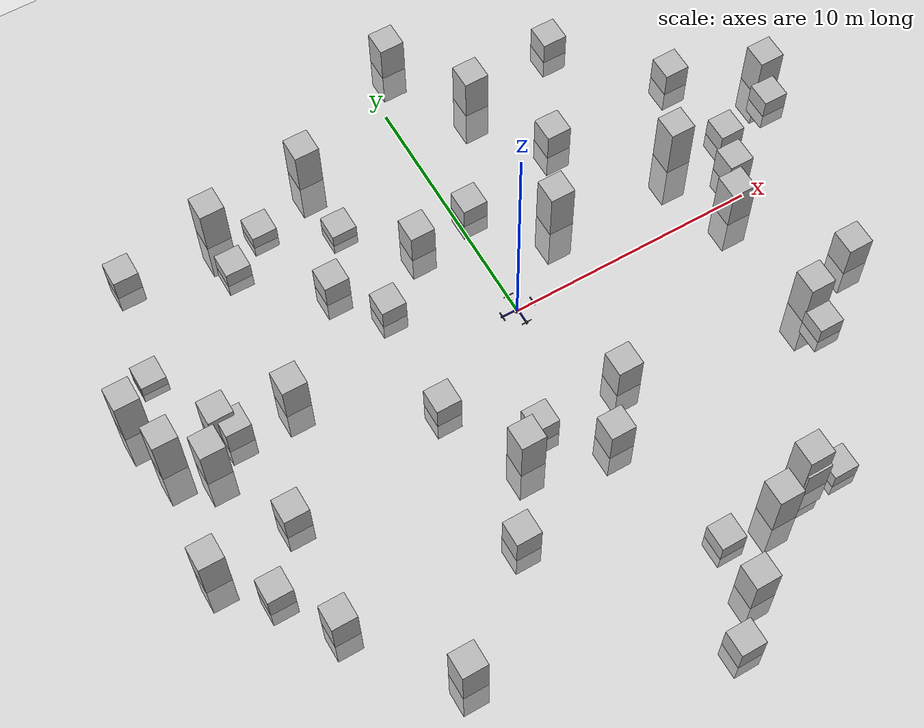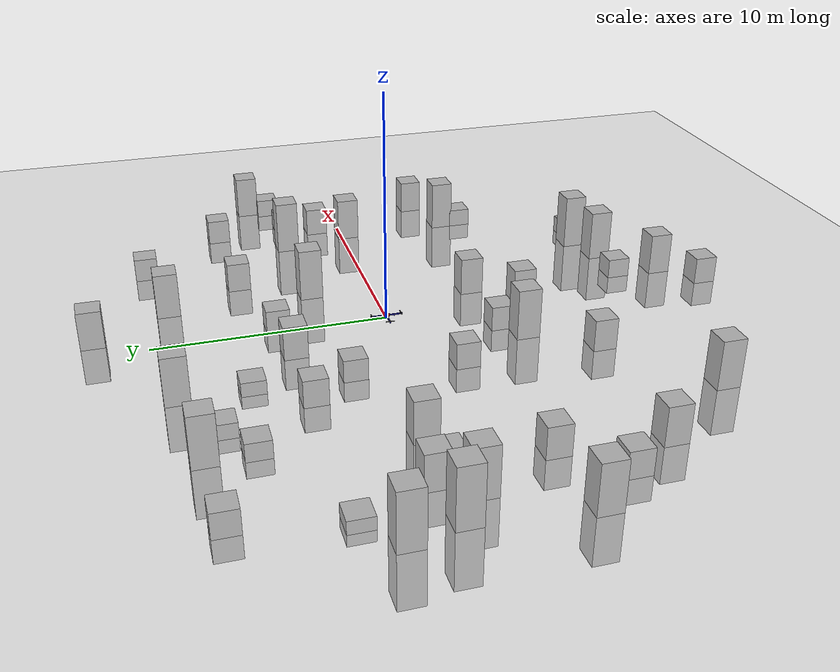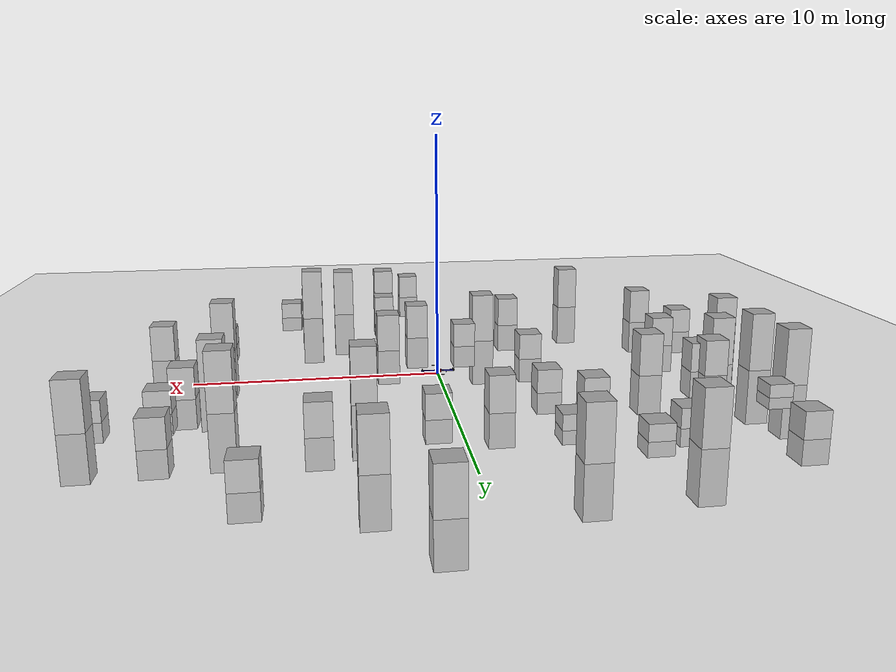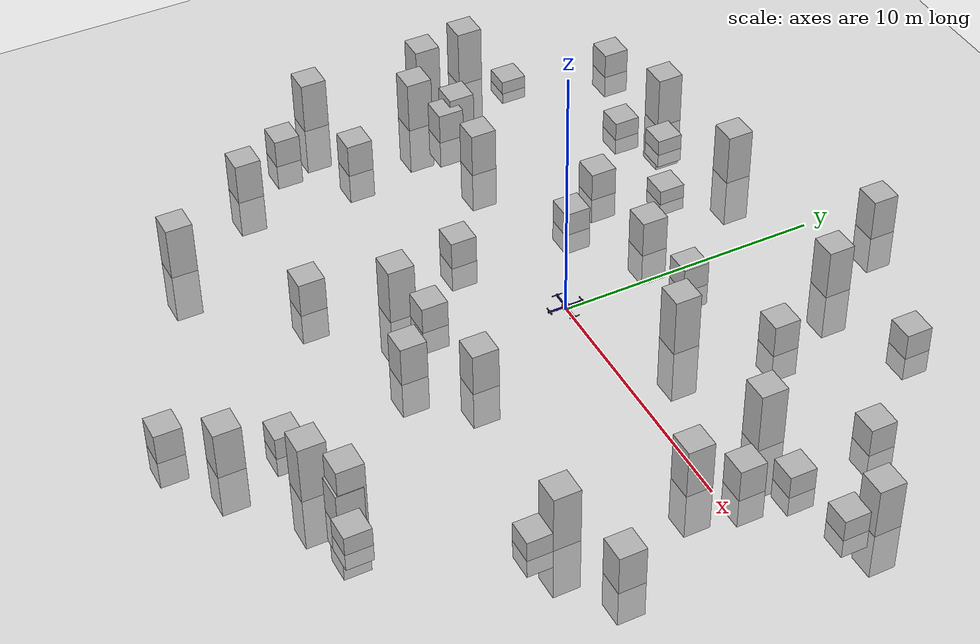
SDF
<?xml version="1.0" ?>
<sdf version="1.4">
  <world name="default">
    <include>
      <uri>model://sun</uri>
    </include>
    <include>
      <uri>model://ground_plane</uri>
    </include>

    <!-- Quadcopter model -->
    <model name="quadcopter">
      <pose>0 0 0 0 0 0</pose>

      <!-- Center Cylinder -->
      <link name="center_cylinder">
        <pose>0 0 0.15 0 0 0</pose>
        <collision name="collision">
          <geometry>
            <cylinder>
              <radius>0.15</radius>
              <length>0.07</length>
            </cylinder>
          </geometry>
        </collision>
        <visual name="visual">
          <geometry>
            <cylinder>
              <radius>0.15</radius>
              <length>0.07</length>
            </cylinder>
          </geometry>
          <material>
            <ambient>0.5 0 0 1</ambient>
            <diffuse>0.5 0 0 1</diffuse>
            <specular>0.5 0 0 1</specular>
            <emissive>0.5 0 0 1</emissive>
          </material>
        </visual>
      </link>

      <!-- Arm 1 -->
      <link name="arm_1">
        <pose>0.35 0 0.15 0 0 0</pose>
        <collision name="collision">
          <geometry>
            <box>
              <size>0.7 0.05 0.05</size>
            </box>
          </geometry>
        </collision>
        <visual name="visual">
          <geometry>
            <box>
              <size>0.7 0.05 0.05</size>
            </box>
          </geometry>
          <material>
            <ambient>0.1 0.1 0.6 1</ambient>
            <diffuse>0.1 0.1 0.6 1</diffuse>
            <specular>0.1 0.1 0.6 1</specular>
            <emissive>0.1 0.1 0.6 1</emissive>
          </material>
        </visual>
        <collision name="base1_collision">
          <geometry>
            <box>
              <size>0.02 0.02 0.1</size>
            </box>
          </geometry>
        </collision>
        <visual name="base_visual">
          <geometry>
            <box>
              <size>0.02 0.02 0.1</size>
            </box>
          </geometry>
          <material>
            <ambient>0.1 0.1 0.6 1</ambient>
            <diffuse>0.1 0.1 0.6 1</diffuse>
            <specular>0.1 0.1 0.6 1</specular>
            <emissive>0.1 0.1 0.6 1</emissive>
          </material>
          <pose>0 0 -0.025 0 0 0</pose>
        </visual>
      </link>

      <!-- Arm 2 -->
      <link name="arm_2">
        <pose>0 0.35 0.15 0 0 1.5708</pose>
        <collision name="collision">
          <geometry>
            <box>
              <size>0.7 0.05 0.05</size>
            </box>
          </geometry>
        </collision>
        <visual name="visual">
          <geometry>
            <box>
              <size>0.7 0.05 0.05</size>
            </box>
          </geometry>
          <material>
            <ambient>0.1 0.1 0.6 1</ambient>
            <diffuse>0.1 0.1 0.6 1</diffuse>
            <specular>0.1 0.1 0.6 1</specular>
            <emissive>0.1 0.1 0.6 1</emissive>
          </material>
        </visual>
        <collision name="base2_collision">
          <geometry>
            <box>
              <size>0.02 0.02 0.1</size>
            </box>
          </geometry>
        </collision>
        <visual name="base_visual">
          <geometry>
            <box>
              <size>0.02 0.02 0.1</size>
            </box>
          </geometry>
          <material>
            <ambient>0.1 0.1 0.6 1</ambient>
            <diffuse>0.1 0.1 0.6 1</diffuse>
            <specular>0.1 0.1 0.6 1</specular>
            <emissive>0.1 0.1 0.6 1</emissive>
          </material>
          <pose>0 0 -0.025 0 0 0</pose>
        </visual>
      </link>

      <!-- Arm 3 -->
      <link name="arm_3">
        <pose>-0.35 0 0.15 0 0 0</pose>
        <collision name="collision">
          <geometry>
            <box>
              <size>0.7 0.05 0.05</size>
            </box>
          </geometry>
        </collision>
        <visual name="visual">
          <geometry>
            <box>
              <size>0.7 0.05 0.05</size>
            </box>
          </geometry>
          <material>
            <ambient>0.1 0.1 0.6 1</ambient>
            <diffuse>0.1 0.1 0.6 1</diffuse>
            <specular>0.1 0.1 0.6 1</specular>
            <emissive>0.1 0.1 0.6 1</emissive>
          </material>
        </visual>
        <collision name="base3_collision">
          <geometry>
            <box>
              <size>0.02 0.02 0.1</size>
            </box>
          </geometry>
        </collision>
        <visual name="base_visual">
          <geometry>
            <box>
              <size>0.02 0.02 0.1</size>
            </box>
          </geometry>
          <material>
            <ambient>0.1 0.1 0.6 1</ambient>
            <diffuse>0.1 0.1 0.6 1</diffuse>
            <specular>0.1 0.1 0.6 1</specular>
            <emissive>0.1 0.1 0.6 1</emissive>
          </material>
          <pose>0 0 -0.025 0 0 0</pose>
        </visual>
      </link>

      <!-- Arm 4 -->
      <link name="arm_4">
        <pose>0 -0.35 0.15 0 0 1.5708</pose>
        <collision name="collision">
          <geometry>
            <box>
              <size>0.7 0.05 0.05</size>
            </box>
          </geometry>
        </collision>
        <visual name="visual">
          <geometry>
            <box>
              <size>0.7 0.05 0.05</size>
            </box>
          </geometry>
          <material>
            <ambient>0.1 0.1 0.6 1</ambient>
            <diffuse>0.1 0.1 0.6 1</diffuse>
            <specular>0.1 0.1 0.6 1</specular>
            <emissive>0.1 0.1 0.6 1</emissive>
          </material>
        </visual>
        <collision name="base4_collision">
          <geometry>
            <box>
              <size>0.02 0.02 0.1</size>
            </box>
          </geometry>
        </collision>
        <visual name="base_visual">
          <geometry>
            <box>
              <size>0.02 0.02 0.1</size>
            </box>
          </geometry>
          <material>
            <ambient>0.1 0.1 0.6 1</ambient>
            <diffuse>0.1 0.1 0.6 1</diffuse>
            <specular>0.1 0.1 0.6 1</specular>
            <emissive>0.1 0.1 0.6 1</emissive>
          </material>
          <pose>0 0 -0.025 0 0 0</pose>
        </visual>
      </link>

      <!-- Rotor 1 -->
      <link name="rotor_1">
        <pose>0.65 0 0.18 0 0 0</pose>
        <collision name="collision">
          <geometry>
            <cylinder>
              <radius>0.05</radius>
              <length>0.01</length>
            </cylinder>
          </geometry>
        </collision>
        <visual name="visual">
          <geometry>
            <cylinder>
              <radius>0.05</radius>
              <length>0.01</length>
            </cylinder>
          </geometry>
          <material>
            <ambient>0.2 0.2 0.2 1</ambient>
            <diffuse>0.2 0.2 0.2 1</diffuse>
            <specular>0.2 0.2 0.2 1</specular>
            <emissive>0.2 0.2 0.2 1</emissive>
          </material>
        </visual>

        <!-- Propeller blades -->
        <collision name="blade_1_collision">
          <geometry>
            <box>
              <size>0.2 0.04 0.01</size>
            </box>
          </geometry>
          <pose>0 0.1 0 0 0 1.5708</pose>
        </collision>
        <visual name="blade_1_visual">
          <geometry>
            <box>
              <size>0.2 0.04 0.01</size>
            </box>
          </geometry>
          <material>
            <ambient>0.2 0.2 0.2 1</ambient>
            <diffuse>0.2 0.2 0.2 1</diffuse>
            <specular>0.2 0.2 0.2 1</specular>
            <emissive>0.2 0.2 0.2 1</emissive>
          </material>
          <pose>0 0.1 0 0 0 1.5708</pose>
        </visual>

        <collision name="blade_2_collision">
          <geometry>
            <box>
              <size>0.2 0.04 0.01</size>
            </box>
          </geometry>
          <pose>0 -0.1 0 0 0 1.5708</pose>
        </collision>
        <visual name="blade_2_visual">
          <geometry>
            <box>
              <size>0.2 0.04 0.01</size>
            </box>
          </geometry>
          <material>
            <ambient>0.2 0.2 0.2 1</ambient>
            <diffuse>0.2 0.2 0.2 1</diffuse>
            <specular>0.2 0.2 0.2 1</specular>
            <emissive>0.2 0.2 0.2 1</emissive>
          </material>
          <pose>0 -0.1 0 0 0 1.5708</pose>
        </visual>
      </link>

      <!-- Rotor 2 -->
      <link name="rotor_2">
        <pose>0 0.65 0.18 0 0 0</pose>
        <collision name="collision">
          <geometry>
            <cylinder>
              <radius>0.05</radius>
              <length>0.01</length>
            </cylinder>
          </geometry>
        </collision>
        <visual name="visual">
          <geometry>
            <cylinder>
              <radius>0.05</radius>
              <length>0.01</length>
            </cylinder>
          </geometry>
          <material>
            <ambient>0.2 0.2 0.2 1</ambient>
            <diffuse>0.2 0.2 0.2 1</diffuse>
            <specular>0.1 0.1 0.1 1</specular>
            <emissive>0 0 0 1</emissive>
          </material>
        </visual>

        <!-- Propeller blades -->
        <collision name="blade_1_collision">
          <geometry>
            <box>
              <size>0.2 0.04 0.01</size>
            </box>
          </geometry>
          <pose>0.1 0 0 0 0 0</pose>
        </collision>
        <visual name="blade_1_visual">
          <geometry>
            <box>
              <size>0.2 0.04 0.01</size>
            </box>
          </geometry>
          <material>
            <ambient>0.2 0.2 0.2 1</ambient>
            <diffuse>0.2 0.2 0.2 1</diffuse>
            <specular>0.1 0.1 0.1 1</specular>
            <emissive>0 0 0 1</emissive>
          </material>
          <pose>0.1 0 0 0 0 0</pose>
        </visual>

        <collision name="blade_2_collision">
          <geometry>
            <box>
              <size>0.2 0.04 0.01</size>
            </box>
          </geometry>
          <pose>-0.1 0 0 0 0 0</pose>
        </collision>
        <visual name="blade_2_visual">
          <geometry>
            <box>
              <size>0.2 0.04 0.01</size>
            </box>
          </geometry>
          <material>
            <ambient>0.2 0.2 0.2 1</ambient>
            <diffuse>0.2 0.2 0.2 1</diffuse>
            <specular>0.1 0.1 0.1 1</specular>
            <emissive>0 0 0 1</emissive>
          </material>
          <pose>-0.1 0 0 0 0 0</pose>
        </visual>
      </link>

      <!-- Rotor 3 -->
      <link name="rotor_3">
        <pose>-0.65 0 0.18 0 0 0</pose>
        <collision name="collision">
          <geometry>
            <cylinder>
              <radius>0.05</radius>
              <length>0.01</length>
            </cylinder>
          </geometry>
        </collision>
        <visual name="visual">
          <geometry>
            <cylinder>
              <radius>0.05</radius>
              <length>0.01</length>
            </cylinder>
          </geometry>
          <material>
            <ambient>0.2 0.2 0.2 1</ambient>
            <diffuse>0.2 0.2 0.2 1</diffuse>
            <specular>0.2 0.2 0.2 1</specular>
            <emissive>0.2 0.2 0.2 1</emissive>
          </material>
        </visual>

        <!-- Propeller blades -->
        <collision name="blade_1_collision">
          <geometry>
            <box>
              <size>0.2 0.04 0.01</size>
            </box>
          </geometry>
          <pose>0 0.1 0 0 0 1.5708</pose>
        </collision>
        <visual name="blade_1_visual">
          <geometry>
            <box>
              <size>0.2 0.04 0.01</size>
            </box>
          </geometry>
          <material>
            <ambient>0.2 0.2 0.2 1</ambient>
            <diffuse>0.2 0.2 0.2 1</diffuse>
            <specular>0.2 0.2 0.2 1</specular>
            <emissive>0.2 0.2 0.2 1</emissive>
          </material>
          <pose>0 0.1 0 0 0 1.5708</pose>
        </visual>

        <collision name="blade_2_collision">
          <geometry>
            <box>
              <size>0.2 0.04 0.01</size>
            </box>
          </geometry>
          <pose>0 -0.1 0 0 0 1.5708</pose>
        </collision>
        <visual name="blade_2_visual">
          <geometry>
            <box>
              <size>0.2 0.04 0.01</size>
            </box>
          </geometry>
          <material>
            <ambient>0.2 0.2 0.2 1</ambient>
            <diffuse>0.2 0.2 0.2 1</diffuse>
            <specular>0.2 0.2 0.2 1</specular>
            <emissive>0.2 0.2 0.2 1</emissive>
          </material>
          <pose>0 -0.1 0 0 0 1.5708</pose>
        </visual>
      </link>

      <!-- Rotor 4 -->
      <link name="rotor_4">
        <pose>0 -0.65 0.18 0 0 0</pose>
        <collision name="collision">
          <geometry>
            <cylinder>
              <radius>0.05</radius>
              <length>0.01</length>
            </cylinder>
          </geometry>
        </collision>
        <visual name="visual">
          <geometry>
            <cylinder>
              <radius>0.05</radius>
              <length>0.01</length>
            </cylinder>
          </geometry>
          <material>
            <ambient>0.2 0.2 0.2 1</ambient>
            <diffuse>0.2 0.2 0.2 1</diffuse>
            <specular>0.1 0.1 0.1 1</specular>
            <emissive>0 0 0 1</emissive>
          </material>
        </visual>

        <!-- Propeller blades -->
        <collision name="blade_1_collision">
          <geometry>
            <box>
              <size>0.2 0.04 0.01</size>
            </box>
          </geometry>
          <pose>0.1 0 0 0 0 0</pose>
        </collision>
        <visual name="blade_1_visual">
          <geometry>
            <box>
              <size>0.2 0.04 0.01</size>
            </box>
          </geometry>
          <material>
            <ambient>0.2 0.2 0.2 1</ambient>
            <diffuse>0.2 0.2 0.2 1</diffuse>
            <specular>0.1 0.1 0.1 1</specular>
            <emissive>0 0 0 1</emissive>
          </material>
          <pose>0.1 0 0 0 0 0</pose>
        </visual>

        <collision name="blade_2_collision">
          <geometry>
            <box>
              <size>0.2 0.04 0.01</size>
            </box>
          </geometry>
          <pose>-0.1 0 0 0 0 0</pose>
        </collision>
        <visual name="blade_2_visual">
          <geometry>
            <box>
              <size>0.2 0.04 0.01</size>
            </box>
          </geometry>
          <material>
            <ambient>0.2 0.2 0.2 1</ambient>
            <diffuse>0.2 0.2 0.2 1</diffuse>
            <specular>0.1 0.1 0.1 1</specular>
            <emissive>0 0 0 1</emissive>
          </material>
          <pose>-0.1 0 0 0 0 0</pose>
        </visual>
      </link>

      <!-- Lidar -->
      <link name="lidar">
        <visual name="visual">
          <pose>0 0 0.11 0 0 0</pose>
          <geometry>
            <cylinder>
              <radius>0.03</radius>
              <length>0.01</length>
            </cylinder>
          </geometry>
          <material>
            <ambient>0.1 1.0 0.0 1</ambient>
            <diffuse>0.1 1.0 0.0 1</diffuse>
          </material>
        </visual>
        <collision name="collision">
          <geometry>
            <cylinder>
              <radius>0.03</radius>
              <length>0.01</length>
            </cylinder>
          </geometry>
        </collision>
        <sensor name="lidar_sensor" type="ray">
          <pose>0 0 0.105 0 0 0</pose>
          <always_on>1</always_on>
          <update_rate>10</update_rate>
          <visualize>true</visualize>
          <ray>
            <scan>
              <horizontal>
                <samples>1</samples>
                <resolution>320</resolution>
                <min_angle>-3.14159</min_angle>
                <max_angle>3.14159</max_angle>
              </horizontal>
              <vertical>
                <samples>128</samples>
                <resolution>1</resolution>
                <min_angle>-0.393</min_angle>
                <max_angle>-1.783</max_angle>
              </vertical>
            </scan>
            <range>
              <min>0.1</min>
              <max>25.0</max>
              <resolution>0.01</resolution>
            </range>
          </ray>
        </sensor>
      </link>

      <!-- Fixed Joints for Arms -->
      <joint name="arm_1_joint" type="fixed">
        <parent>center_cylinder</parent>
        <child>arm_1</child>
      </joint>

      <joint name="arm_2_joint" type="fixed">
        <parent>center_cylinder</parent>
        <child>arm_2</child>
      </joint>

      <joint name="arm_3_joint" type="fixed">
        <parent>center_cylinder</parent>
        <child>arm_3</child>
      </joint>

      <joint name="arm_4_joint" type="fixed">
        <parent>center_cylinder</parent>
        <child>arm_4</child>
      </joint>

      <joint name="lidar_joint" type="fixed">
        <parent>center_cylinder</parent>
        <child>lidar</child>
      </joint>

      <!-- Joints -->
      <joint name="rotor_1_joint" type="revolute">
        <parent>arm_1</parent>
        <child>rotor_1</child>
        <axis>
          <xyz>0 0 1</xyz>
        </axis>
      </joint>

      <joint name="rotor_2_joint" type="revolute">
        <parent>arm_2</parent>
        <child>rotor_2</child>
        <axis>
          <xyz>0 0 1</xyz>
        </axis>
      </joint>

      <joint name="rotor_3_joint" type="revolute">
        <parent>arm_3</parent>
        <child>rotor_3</child>
        <axis>
          <xyz>0 0 1</xyz>
        </axis>
      </joint>

      <joint name="rotor_4_joint" type="revolute">
        <parent>arm_4</parent>
        <child>rotor_4</child>
        <axis>
          <xyz>0 0 1</xyz>
        </axis>
      </joint>

    </model>

<!--Environment-->

    <!--Terrain-->
    <model name="terrain">
      <static>true</static>
      <link name="link_0">
        <collision name="collision">
          <geometry>
            <box>
              <size>1 1 4.797276148391061</size>
            </box>
          </geometry>
        </collision>
        <visual name="visual">
          <geometry>
            <box>
              <size>1 1 4.797276148391061</size>
            </box>
          </geometry>
        </visual>
        <pose>8.58795235359191 2.820355815912169 0 0 0 0</pose>
      </link>
      <link name="link_1">
        <collision name="collision">
          <geometry>
            <box>
              <size>1 1 4.425515428425143</size>
            </box>
          </geometry>
        </collision>
        <visual name="visual">
          <geometry>
            <box>
              <size>1 1 4.425515428425143</size>
            </box>
          </geometry>
        </visual>
        <pose>-2.786689993144776 -5.259783282959198 0 0 0 0</pose>
      </link>
      <link name="link_2">
        <collision name="collision">
          <geometry>
            <box>
              <size>1 1 3.313249024845009</size>
            </box>
          </geometry>
        </collision>
        <visual name="visual">
          <geometry>
            <box>
              <size>1 1 3.313249024845009</size>
            </box>
          </geometry>
        </visual>
        <pose>1.2817479630994342 12.225659118139156 0 0 0 0</pose>
      </link>
      <link name="link_3">
        <collision name="collision">
          <geometry>
            <box>
              <size>1 1 2.2031178788112453</size>
            </box>
          </geometry>
        </collision>
        <visual name="visual">
          <geometry>
            <box>
              <size>1 1 2.2031178788112453</size>
            </box>
          </geometry>
        </visual>
        <pose>-4.368640953621796 -2.087737522603648 0 0 0 0</pose>
      </link>
      <link name="link_4">
        <collision name="collision">
          <geometry>
            <box>
              <size>1 1 4.6955894323103395</size>
            </box>
          </geometry>
        </collision>
        <visual name="visual">
          <geometry>
            <box>
              <size>1 1 4.6955894323103395</size>
            </box>
          </geometry>
        </visual>
        <pose>-14.249753529190238 3.078306837697159 0 0 0 0</pose>
      </link>
      <link name="link_5">
        <collision name="collision">
          <geometry>
            <box>
              <size>1 1 4.592401424278318</size>
            </box>
          </geometry>
        </collision>
        <visual name="visual">
          <geometry>
            <box>
              <size>1 1 4.592401424278318</size>
            </box>
          </geometry>
        </visual>
        <pose>3.254797044774204 2.7230706356709042 0 0 0 0</pose>
      </link>
      <link name="link_6">
        <collision name="collision">
          <geometry>
            <box>
              <size>1 1 3.7088450405750706</size>
            </box>
          </geometry>
        </collision>
        <visual name="visual">
          <geometry>
            <box>
              <size>1 1 3.7088450405750706</size>
            </box>
          </geometry>
        </visual>
        <pose>1.4257287935721799 -13.437790134861757 0 0 0 0</pose>
      </link>
      <link name="link_7">
        <collision name="collision">
          <geometry>
            <box>
              <size>1 1 4.129935998589424</size>
            </box>
          </geometry>
        </collision>
        <visual name="visual">
          <geometry>
            <box>
              <size>1 1 4.129935998589424</size>
            </box>
          </geometry>
        </visual>
        <pose>-3.976072438445957 9.25598038503858 0 0 0 0</pose>
      </link>
      <link name="link_8">
        <collision name="collision">
          <geometry>
            <box>
              <size>1 1 1.4630446182339143</size>
            </box>
          </geometry>
        </collision>
        <visual name="visual">
          <geometry>
            <box>
              <size>1 1 1.4630446182339143</size>
            </box>
          </geometry>
        </visual>
        <pose>6.4412607626023295 -11.152638223264178 0 0 0 0</pose>
      </link>
      <link name="link_9">
        <collision name="collision">
          <geometry>
            <box>
              <size>1 1 2.7268644217494646</size>
            </box>
          </geometry>
        </collision>
        <visual name="visual">
          <geometry>
            <box>
              <size>1 1 2.7268644217494646</size>
            </box>
          </geometry>
        </visual>
        <pose>-4.555563316360246 -7.9139834653230565 0 0 0 0</pose>
      </link>
      <link name="link_10">
        <collision name="collision">
          <geometry>
            <box>
              <size>1 1 1.7585864625913676</size>
            </box>
          </geometry>
        </collision>
        <visual name="visual">
          <geometry>
            <box>
              <size>1 1 1.7585864625913676</size>
            </box>
          </geometry>
        </visual>
        <pose>10.86792398231428 2.5818200670937053 0 0 0 0</pose>
      </link>
      <link name="link_11">
        <collision name="collision">
          <geometry>
            <box>
              <size>1 1 4.971730057950244</size>
            </box>
          </geometry>
        </collision>
        <visual name="visual">
          <geometry>
            <box>
              <size>1 1 4.971730057950244</size>
            </box>
          </geometry>
        </visual>
        <pose>5.337385621557349 -10.822275102575167 0 0 0 0</pose>
      </link>
      <link name="link_12">
        <collision name="collision">
          <geometry>
            <box>
              <size>1 1 2.54533059994459</size>
            </box>
          </geometry>
        </collision>
        <visual name="visual">
          <geometry>
            <box>
              <size>1 1 2.54533059994459</size>
            </box>
          </geometry>
        </visual>
        <pose>4.954329304279113 5.70970461265464 0 0 0 0</pose>
      </link>
      <link name="link_13">
        <collision name="collision">
          <geometry>
            <box>
              <size>1 1 3.1323957303005705</size>
            </box>
          </geometry>
        </collision>
        <visual name="visual">
          <geometry>
            <box>
              <size>1 1 3.1323957303005705</size>
            </box>
          </geometry>
        </visual>
        <pose>0.27224822816485705 -6.265644216463958 0 0 0 0</pose>
      </link>
      <link name="link_14">
        <collision name="collision">
          <geometry>
            <box>
              <size>1 1 2.2617593637091136</size>
            </box>
          </geometry>
        </collision>
        <visual name="visual">
          <geometry>
            <box>
              <size>1 1 2.2617593637091136</size>
            </box>
          </geometry>
        </visual>
        <pose>-5.452967889710692 4.2636004207478955 0 0 0 0</pose>
      </link>
      <link name="link_15">
        <collision name="collision">
          <geometry>
            <box>
              <size>1 1 3.315815704356654</size>
            </box>
          </geometry>
        </collision>
        <visual name="visual">
          <geometry>
            <box>
              <size>1 1 3.315815704356654</size>
            </box>
          </geometry>
        </visual>
        <pose>1.8102282633904458 -4.3118232770012295 0 0 0 0</pose>
      </link>
      <link name="link_16">
        <collision name="collision">
          <geometry>
            <box>
              <size>1 1 1.0085346905850097</size>
            </box>
          </geometry>
        </collision>
        <visual name="visual">
          <geometry>
            <box>
              <size>1 1 1.0085346905850097</size>
            </box>
          </geometry>
        </visual>
        <pose>-12.930056887351569 4.339020150179316 0 0 0 0</pose>
      </link>
      <link name="link_17">
        <collision name="collision">
          <geometry>
            <box>
              <size>1 1 3.2788638728453803</size>
            </box>
          </geometry>
        </collision>
        <visual name="visual">
          <geometry>
            <box>
              <size>1 1 3.2788638728453803</size>
            </box>
          </geometry>
        </visual>
        <pose>-11.425486998520288 -7.481454735439832 0 0 0 0</pose>
      </link>
      <link name="link_18">
        <collision name="collision">
          <geometry>
            <box>
              <size>1 1 3.9625242802775458</size>
            </box>
          </geometry>
        </collision>
        <visual name="visual">
          <geometry>
            <box>
              <size>1 1 3.9625242802775458</size>
            </box>
          </geometry>
        </visual>
        <pose>3.2254498412345 9.003717723297878 0 0 0 0</pose>
      </link>
      <link name="link_19">
        <collision name="collision">
          <geometry>
            <box>
              <size>1 1 1.4494741926418508</size>
            </box>
          </geometry>
        </collision>
        <visual name="visual">
          <geometry>
            <box>
              <size>1 1 1.4494741926418508</size>
            </box>
          </geometry>
        </visual>
        <pose>-8.24205436572382 6.843704257404674 0 0 0 0</pose>
      </link>
      <link name="link_20">
        <collision name="collision">
          <geometry>
            <box>
              <size>1 1 3.544263973572083</size>
            </box>
          </geometry>
        </collision>
        <visual name="visual">
          <geometry>
            <box>
              <size>1 1 3.544263973572083</size>
            </box>
          </geometry>
        </visual>
        <pose>-8.85182241073058 0.9738890357256338 0 0 0 0</pose>
      </link>
      <link name="link_21">
        <collision name="collision">
          <geometry>
            <box>
              <size>1 1 4.161951108356025</size>
            </box>
          </geometry>
        </collision>
        <visual name="visual">
          <geometry>
            <box>
              <size>1 1 4.161951108356025</size>
            </box>
          </geometry>
        </visual>
        <pose>-14.318577061010801 -3.5564191942785115 0 0 0 0</pose>
      </link>
      <link name="link_22">
        <collision name="collision">
          <geometry>
            <box>
              <size>1 1 4.167983574211728</size>
            </box>
          </geometry>
        </collision>
        <visual name="visual">
          <geometry>
            <box>
              <size>1 1 4.167983574211728</size>
            </box>
          </geometry>
        </visual>
        <pose>-12.472747607218793 0.04507443198782113 0 0 0 0</pose>
      </link>
      <link name="link_23">
        <collision name="collision">
          <geometry>
            <box>
              <size>1 1 2.878105441529223</size>
            </box>
          </geometry>
        </collision>
        <visual name="visual">
          <geometry>
            <box>
              <size>1 1 2.878105441529223</size>
            </box>
          </geometry>
        </visual>
        <pose>-1.7881548724118836 4.352047418835923 0 0 0 0</pose>
      </link>
      <link name="link_24">
        <collision name="collision">
          <geometry>
            <box>
              <size>1 1 1.2197569882210142</size>
            </box>
          </geometry>
        </collision>
        <visual name="visual">
          <geometry>
            <box>
              <size>1 1 1.2197569882210142</size>
            </box>
          </geometry>
        </visual>
        <pose>-6.65561549205486 7.826058366073756 0 0 0 0</pose>
      </link>
      <link name="link_25">
        <collision name="collision">
          <geometry>
            <box>
              <size>1 1 1.8454375799917204</size>
            </box>
          </geometry>
        </collision>
        <visual name="visual">
          <geometry>
            <box>
              <size>1 1 1.8454375799917204</size>
            </box>
          </geometry>
        </visual>
        <pose>-4.092608986783334 2.42546275618043 0 0 0 0</pose>
      </link>
      <link name="link_26">
        <collision name="collision">
          <geometry>
            <box>
              <size>1 1 2.216345938846092</size>
            </box>
          </geometry>
        </collision>
        <visual name="visual">
          <geometry>
            <box>
              <size>1 1 2.216345938846092</size>
            </box>
          </geometry>
        </visual>
        <pose>10.483545441924718 5.939973732705667 0 0 0 0</pose>
      </link>
      <link name="link_27">
        <collision name="collision">
          <geometry>
            <box>
              <size>1 1 4.2750371155487095</size>
            </box>
          </geometry>
        </collision>
        <visual name="visual">
          <geometry>
            <box>
              <size>1 1 4.2750371155487095</size>
            </box>
          </geometry>
        </visual>
        <pose>-8.195201618205008 8.696980299729013 0 0 0 0</pose>
      </link>
      <link name="link_28">
        <collision name="collision">
          <geometry>
            <box>
              <size>1 1 4.5575029036354735</size>
            </box>
          </geometry>
        </collision>
        <visual name="visual">
          <geometry>
            <box>
              <size>1 1 4.5575029036354735</size>
            </box>
          </geometry>
        </visual>
        <pose>3.6907882937684633 -11.437026005625869 0 0 0 0</pose>
      </link>
      <link name="link_29">
        <collision name="collision">
          <geometry>
            <box>
              <size>1 1 2.956822784301747</size>
            </box>
          </geometry>
        </collision>
        <visual name="visual">
          <geometry>
            <box>
              <size>1 1 2.956822784301747</size>
            </box>
          </geometry>
        </visual>
        <pose>5.359440145418468 -10.906458291857861 0 0 0 0</pose>
      </link>
      <link name="link_30">
        <collision name="collision">
          <geometry>
            <box>
              <size>1 1 3.0031590932763557</size>
            </box>
          </geometry>
        </collision>
        <visual name="visual">
          <geometry>
            <box>
              <size>1 1 3.0031590932763557</size>
            </box>
          </geometry>
        </visual>
        <pose>-11.575647105257097 1.4030905051705496 0 0 0 0</pose>
      </link>
      <link name="link_31">
        <collision name="collision">
          <geometry>
            <box>
              <size>1 1 2.0894334971512674</size>
            </box>
          </geometry>
        </collision>
        <visual name="visual">
          <geometry>
            <box>
              <size>1 1 2.0894334971512674</size>
            </box>
          </geometry>
        </visual>
        <pose>-1.7601459088446596 -4.502416027570424 0 0 0 0</pose>
      </link>
      <link name="link_32">
        <collision name="collision">
          <geometry>
            <box>
              <size>1 1 1.5818882087360904</size>
            </box>
          </geometry>
        </collision>
        <visual name="visual">
          <geometry>
            <box>
              <size>1 1 1.5818882087360904</size>
            </box>
          </geometry>
        </visual>
        <pose>9.330128050502651 -6.177616062688783 0 0 0 0</pose>
      </link>
      <link name="link_33">
        <collision name="collision">
          <geometry>
            <box>
              <size>1 1 4.5435224214281345</size>
            </box>
          </geometry>
        </collision>
        <visual name="visual">
          <geometry>
            <box>
              <size>1 1 4.5435224214281345</size>
            </box>
          </geometry>
        </visual>
        <pose>9.333444328476428 -5.24182438256614 0 0 0 0</pose>
      </link>
      <link name="link_34">
        <collision name="collision">
          <geometry>
            <box>
              <size>1 1 2.638729029496321</size>
            </box>
          </geometry>
        </collision>
        <visual name="visual">
          <geometry>
            <box>
              <size>1 1 2.638729029496321</size>
            </box>
          </geometry>
        </visual>
        <pose>-10.983994576619411 -3.172423269341163 0 0 0 0</pose>
      </link>
      <link name="link_35">
        <collision name="collision">
          <geometry>
            <box>
              <size>1 1 1.994689305436891</size>
            </box>
          </geometry>
        </collision>
        <visual name="visual">
          <geometry>
            <box>
              <size>1 1 1.994689305436891</size>
            </box>
          </geometry>
        </visual>
        <pose>-12.001201515024402 8.458875380118258 0 0 0 0</pose>
      </link>
      <link name="link_36">
        <collision name="collision">
          <geometry>
            <box>
              <size>1 1 2.5325080003944276</size>
            </box>
          </geometry>
        </collision>
        <visual name="visual">
          <geometry>
            <box>
              <size>1 1 2.5325080003944276</size>
            </box>
          </geometry>
        </visual>
        <pose>10.22056879524705 1.0791904491775846 0 0 0 0</pose>
      </link>
      <link name="link_37">
        <collision name="collision">
          <geometry>
            <box>
              <size>1 1 2.2148137728409827</size>
            </box>
          </geometry>
        </collision>
        <visual name="visual">
          <geometry>
            <box>
              <size>1 1 2.2148137728409827</size>
            </box>
          </geometry>
        </visual>
        <pose>-12.779912463585754 -5.379824893380615 0 0 0 0</pose>
      </link>
      <link name="link_38">
        <collision name="collision">
          <geometry>
            <box>
              <size>1 1 4.946590827404171</size>
            </box>
          </geometry>
        </collision>
        <visual name="visual">
          <geometry>
            <box>
              <size>1 1 4.946590827404171</size>
            </box>
          </geometry>
        </visual>
        <pose>-13.757478592513138 1.0236127932915622 0 0 0 0</pose>
      </link>
      <link name="link_39">
        <collision name="collision">
          <geometry>
            <box>
              <size>1 1 3.9400421412338438</size>
            </box>
          </geometry>
        </collision>
        <visual name="visual">
          <geometry>
            <box>
              <size>1 1 3.9400421412338438</size>
            </box>
          </geometry>
        </visual>
        <pose>13.549019451606412 4.085802779673479 0 0 0 0</pose>
      </link>
      <link name="link_40">
        <collision name="collision">
          <geometry>
            <box>
              <size>1 1 2.3750691341400905</size>
            </box>
          </geometry>
        </collision>
        <visual name="visual">
          <geometry>
            <box>
              <size>1 1 2.3750691341400905</size>
            </box>
          </geometry>
        </visual>
        <pose>-0.10141708206960942 -14.961680263293223 0 0 0 0</pose>
      </link>
      <link name="link_41">
        <collision name="collision">
          <geometry>
            <box>
              <size>1 1 1.642783935688772</size>
            </box>
          </geometry>
        </collision>
        <visual name="visual">
          <geometry>
            <box>
              <size>1 1 1.642783935688772</size>
            </box>
          </geometry>
        </visual>
        <pose>13.235647471114792 3.109269198828134 0 0 0 0</pose>
      </link>
      <link name="link_42">
        <collision name="collision">
          <geometry>
            <box>
              <size>1 1 3.067231011357186</size>
            </box>
          </geometry>
        </collision>
        <visual name="visual">
          <geometry>
            <box>
              <size>1 1 3.067231011357186</size>
            </box>
          </geometry>
        </visual>
        <pose>11.827588056976609 -4.283072951302717 0 0 0 0</pose>
      </link>
      <link name="link_43">
        <collision name="collision">
          <geometry>
            <box>
              <size>1 1 2.441072215802304</size>
            </box>
          </geometry>
        </collision>
        <visual name="visual">
          <geometry>
            <box>
              <size>1 1 2.441072215802304</size>
            </box>
          </geometry>
        </visual>
        <pose>-11.227157164797529 0.7686484189905531 0 0 0 0</pose>
      </link>
      <link name="link_44">
        <collision name="collision">
          <geometry>
            <box>
              <size>1 1 2.0374580083691836</size>
            </box>
          </geometry>
        </collision>
        <visual name="visual">
          <geometry>
            <box>
              <size>1 1 2.0374580083691836</size>
            </box>
          </geometry>
        </visual>
        <pose>7.176339946560219 9.666105618605421 0 0 0 0</pose>
      </link>
      <link name="link_45">
        <collision name="collision">
          <geometry>
            <box>
              <size>1 1 1.9356404820271762</size>
            </box>
          </geometry>
        </collision>
        <visual name="visual">
          <geometry>
            <box>
              <size>1 1 1.9356404820271762</size>
            </box>
          </geometry>
        </visual>
        <pose>0.6313486646233102 4.659206921011286 0 0 0 0</pose>
      </link>
      <link name="link_46">
        <collision name="collision">
          <geometry>
            <box>
              <size>1 1 3.9110695087099123</size>
            </box>
          </geometry>
        </collision>
        <visual name="visual">
          <geometry>
            <box>
              <size>1 1 3.9110695087099123</size>
            </box>
          </geometry>
        </visual>
        <pose>9.277616011609265 -0.332695747764701 0 0 0 0</pose>
      </link>
      <link name="link_47">
        <collision name="collision">
          <geometry>
            <box>
              <size>1 1 1.1325193373412983</size>
            </box>
          </geometry>
        </collision>
        <visual name="visual">
          <geometry>
            <box>
              <size>1 1 1.1325193373412983</size>
            </box>
          </geometry>
        </visual>
        <pose>-4.034519631089124 6.395207184392024 0 0 0 0</pose>
      </link>
      <link name="link_48">
        <collision name="collision">
          <geometry>
            <box>
              <size>1 1 4.205013149463201</size>
            </box>
          </geometry>
        </collision>
        <visual name="visual">
          <geometry>
            <box>
              <size>1 1 4.205013149463201</size>
            </box>
          </geometry>
        </visual>
        <pose>-8.594449486349813 -11.217925969797982 0 0 0 0</pose>
      </link>
      <link name="link_49">
        <collision name="collision">
          <geometry>
            <box>
              <size>1 1 1.6949935558042601</size>
            </box>
          </geometry>
        </collision>
        <visual name="visual">
          <geometry>
            <box>
              <size>1 1 1.6949935558042601</size>
            </box>
          </geometry>
        </visual>
        <pose>1.5355768742225493 -11.417225394054682 0 0 0 0</pose>
      </link>
    </model>

    <!-- Physics -->
    <physics type="ode">
      <max_step_size>0.001</max_step_size>
      <real_time_factor>1</real_time_factor>
      <real_time_update_rate>100</real_time_update_rate>
    </physics>

    <!-- Gravity -->
    <gravity>0 0 -9.81</gravity>

    <plugin name="GazeboPlugin" filename="lib/libGazeboCoSimPlugin.so"><portNumber>14581</portNumber></plugin>
  </world>
</sdf>
